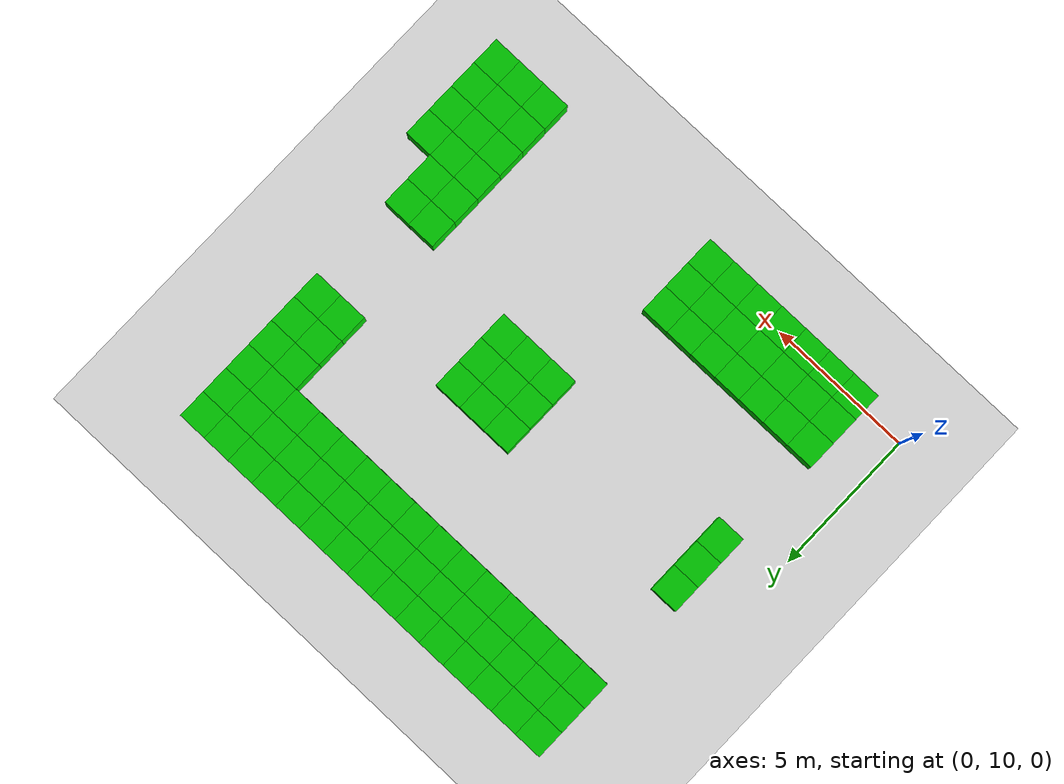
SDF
<sdf version="1.6">
 <world name="generated_maze">
  <model name="ground_plane">
   <static>true</static>
   <link name="link">
    <collision name="collision">
     <geometry><plane><normal>0 0 1</normal><size>100 100</size></plane></geometry>
    </collision>
    <visual name="visual">
     <geometry><plane><normal>0 0 1</normal><size>100 100</size></plane></geometry>
     <material>
      <ambient>0.9 0.9 0.9 1</ambient>
      <diffuse>0.9 0.9 0.9 1</diffuse>
      <specular>0.3 0.3 0.3 1</specular>
     </material>
    </visual>
   </link>
  </model>
  <model name="wall_0_26">
   <static>true</static>
   <pose>2 24 0.5 0 0 0</pose>
   <link name="link">
    <collision name="collision"><geometry><box><size>1 1 1</size></box></geometry></collision>
    <visual name="visual">
     <geometry><box><size>1 1 1</size></box></geometry>
     <material>
      <ambient>0.0 0.8 0.0 1</ambient>
      <diffuse>0.0 0.8 0.0 1</diffuse>
      <specular>0.1 0.1 0.1 1</specular>
     </material>
    </visual>
   </link>
  </model>
  <model name="wall_0_27">
   <static>true</static>
   <pose>3 24 0.5 0 0 0</pose>
   <link name="link">
    <collision name="collision"><geometry><box><size>1 1 1</size></box></geometry></collision>
    <visual name="visual">
     <geometry><box><size>1 1 1</size></box></geometry>
     <material>
      <ambient>0.0 0.8 0.0 1</ambient>
      <diffuse>0.0 0.8 0.0 1</diffuse>
      <specular>0.1 0.1 0.1 1</specular>
     </material>
    </visual>
   </link>
  </model>
  <model name="wall_0_28">
   <static>true</static>
   <pose>4 24 0.5 0 0 0</pose>
   <link name="link">
    <collision name="collision"><geometry><box><size>1 1 1</size></box></geometry></collision>
    <visual name="visual">
     <geometry><box><size>1 1 1</size></box></geometry>
     <material>
      <ambient>0.0 0.8 0.0 1</ambient>
      <diffuse>0.0 0.8 0.0 1</diffuse>
      <specular>0.1 0.1 0.1 1</specular>
     </material>
    </visual>
   </link>
  </model>
  <model name="wall_0_29">
   <static>true</static>
   <pose>5 24 0.5 0 0 0</pose>
   <link name="link">
    <collision name="collision"><geometry><box><size>1 1 1</size></box></geometry></collision>
    <visual name="visual">
     <geometry><box><size>1 1 1</size></box></geometry>
     <material>
      <ambient>0.0 0.8 0.0 1</ambient>
      <diffuse>0.0 0.8 0.0 1</diffuse>
      <specular>0.1 0.1 0.1 1</specular>
     </material>
    </visual>
   </link>
  </model>
  <model name="wall_0_30">
   <static>true</static>
   <pose>6 24 0.5 0 0 0</pose>
   <link name="link">
    <collision name="collision"><geometry><box><size>1 1 1</size></box></geometry></collision>
    <visual name="visual">
     <geometry><box><size>1 1 1</size></box></geometry>
     <material>
      <ambient>0.0 0.8 0.0 1</ambient>
      <diffuse>0.0 0.8 0.0 1</diffuse>
      <specular>0.1 0.1 0.1 1</specular>
     </material>
    </visual>
   </link>
  </model>
  <model name="wall_0_31">
   <static>true</static>
   <pose>7 24 0.5 0 0 0</pose>
   <link name="link">
    <collision name="collision"><geometry><box><size>1 1 1</size></box></geometry></collision>
    <visual name="visual">
     <geometry><box><size>1 1 1</size></box></geometry>
     <material>
      <ambient>0.0 0.8 0.0 1</ambient>
      <diffuse>0.0 0.8 0.0 1</diffuse>
      <specular>0.1 0.1 0.1 1</specular>
     </material>
    </visual>
   </link>
  </model>
  <model name="wall_0_32">
   <static>true</static>
   <pose>8 24 0.5 0 0 0</pose>
   <link name="link">
    <collision name="collision"><geometry><box><size>1 1 1</size></box></geometry></collision>
    <visual name="visual">
     <geometry><box><size>1 1 1</size></box></geometry>
     <material>
      <ambient>0.0 0.8 0.0 1</ambient>
      <diffuse>0.0 0.8 0.0 1</diffuse>
      <specular>0.1 0.1 0.1 1</specular>
     </material>
    </visual>
   </link>
  </model>
  <model name="wall_0_33">
   <static>true</static>
   <pose>9 24 0.5 0 0 0</pose>
   <link name="link">
    <collision name="collision"><geometry><box><size>1 1 1</size></box></geometry></collision>
    <visual name="visual">
     <geometry><box><size>1 1 1</size></box></geometry>
     <material>
      <ambient>0.0 0.8 0.0 1</ambient>
      <diffuse>0.0 0.8 0.0 1</diffuse>
      <specular>0.1 0.1 0.1 1</specular>
     </material>
    </visual>
   </link>
  </model>
  <model name="wall_0_34">
   <static>true</static>
   <pose>10 24 0.5 0 0 0</pose>
   <link name="link">
    <collision name="collision"><geometry><box><size>1 1 1</size></box></geometry></collision>
    <visual name="visual">
     <geometry><box><size>1 1 1</size></box></geometry>
     <material>
      <ambient>0.0 0.8 0.0 1</ambient>
      <diffuse>0.0 0.8 0.0 1</diffuse>
      <specular>0.1 0.1 0.1 1</specular>
     </material>
    </visual>
   </link>
  </model>
  <model name="wall_0_35">
   <static>true</static>
   <pose>11 24 0.5 0 0 0</pose>
   <link name="link">
    <collision name="collision"><geometry><box><size>1 1 1</size></box></geometry></collision>
    <visual name="visual">
     <geometry><box><size>1 1 1</size></box></geometry>
     <material>
      <ambient>0.0 0.8 0.0 1</ambient>
      <diffuse>0.0 0.8 0.0 1</diffuse>
      <specular>0.1 0.1 0.1 1</specular>
     </material>
    </visual>
   </link>
  </model>
  <model name="wall_0_36">
   <static>true</static>
   <pose>12 24 0.5 0 0 0</pose>
   <link name="link">
    <collision name="collision"><geometry><box><size>1 1 1</size></box></geometry></collision>
    <visual name="visual">
     <geometry><box><size>1 1 1</size></box></geometry>
     <material>
      <ambient>0.0 0.8 0.0 1</ambient>
      <diffuse>0.0 0.8 0.0 1</diffuse>
      <specular>0.1 0.1 0.1 1</specular>
     </material>
    </visual>
   </link>
  </model>
  <model name="wall_0_37">
   <static>true</static>
   <pose>13 24 0.5 0 0 0</pose>
   <link name="link">
    <collision name="collision"><geometry><box><size>1 1 1</size></box></geometry></collision>
    <visual name="visual">
     <geometry><box><size>1 1 1</size></box></geometry>
     <material>
      <ambient>0.0 0.8 0.0 1</ambient>
      <diffuse>0.0 0.8 0.0 1</diffuse>
      <specular>0.1 0.1 0.1 1</specular>
     </material>
    </visual>
   </link>
  </model>
  <model name="wall_0_38">
   <static>true</static>
   <pose>14 24 0.5 0 0 0</pose>
   <link name="link">
    <collision name="collision"><geometry><box><size>1 1 1</size></box></geometry></collision>
    <visual name="visual">
     <geometry><box><size>1 1 1</size></box></geometry>
     <material>
      <ambient>0.0 0.8 0.0 1</ambient>
      <diffuse>0.0 0.8 0.0 1</diffuse>
      <specular>0.1 0.1 0.1 1</specular>
     </material>
    </visual>
   </link>
  </model>
  <model name="wall_0_39">
   <static>true</static>
   <pose>15 24 0.5 0 0 0</pose>
   <link name="link">
    <collision name="collision"><geometry><box><size>1 1 1</size></box></geometry></collision>
    <visual name="visual">
     <geometry><box><size>1 1 1</size></box></geometry>
     <material>
      <ambient>0.0 0.8 0.0 1</ambient>
      <diffuse>0.0 0.8 0.0 1</diffuse>
      <specular>0.1 0.1 0.1 1</specular>
     </material>
    </visual>
   </link>
  </model>
  <model name="wall_0_40">
   <static>true</static>
   <pose>16 24 0.5 0 0 0</pose>
   <link name="link">
    <collision name="collision"><geometry><box><size>1 1 1</size></box></geometry></collision>
    <visual name="visual">
     <geometry><box><size>1 1 1</size></box></geometry>
     <material>
      <ambient>0.0 0.8 0.0 1</ambient>
      <diffuse>0.0 0.8 0.0 1</diffuse>
      <specular>0.1 0.1 0.1 1</specular>
     </material>
    </visual>
   </link>
  </model>
  <model name="wall_1_26">
   <static>true</static>
   <pose>2 23 0.5 0 0 0</pose>
   <link name="link">
    <collision name="collision"><geometry><box><size>1 1 1</size></box></geometry></collision>
    <visual name="visual">
     <geometry><box><size>1 1 1</size></box></geometry>
     <material>
      <ambient>0.0 0.8 0.0 1</ambient>
      <diffuse>0.0 0.8 0.0 1</diffuse>
      <specular>0.1 0.1 0.1 1</specular>
     </material>
    </visual>
   </link>
  </model>
  <model name="wall_1_27">
   <static>true</static>
   <pose>3 23 0.5 0 0 0</pose>
   <link name="link">
    <collision name="collision"><geometry><box><size>1 1 1</size></box></geometry></collision>
    <visual name="visual">
     <geometry><box><size>1 1 1</size></box></geometry>
     <material>
      <ambient>0.0 0.8 0.0 1</ambient>
      <diffuse>0.0 0.8 0.0 1</diffuse>
      <specular>0.1 0.1 0.1 1</specular>
     </material>
    </visual>
   </link>
  </model>
  <model name="wall_1_28">
   <static>true</static>
   <pose>4 23 0.5 0 0 0</pose>
   <link name="link">
    <collision name="collision"><geometry><box><size>1 1 1</size></box></geometry></collision>
    <visual name="visual">
     <geometry><box><size>1 1 1</size></box></geometry>
     <material>
      <ambient>0.0 0.8 0.0 1</ambient>
      <diffuse>0.0 0.8 0.0 1</diffuse>
      <specular>0.1 0.1 0.1 1</specular>
     </material>
    </visual>
   </link>
  </model>
  <model name="wall_1_29">
   <static>true</static>
   <pose>5 23 0.5 0 0 0</pose>
   <link name="link">
    <collision name="collision"><geometry><box><size>1 1 1</size></box></geometry></collision>
    <visual name="visual">
     <geometry><box><size>1 1 1</size></box></geometry>
     <material>
      <ambient>0.0 0.8 0.0 1</ambient>
      <diffuse>0.0 0.8 0.0 1</diffuse>
      <specular>0.1 0.1 0.1 1</specular>
     </material>
    </visual>
   </link>
  </model>
  <model name="wall_1_30">
   <static>true</static>
   <pose>6 23 0.5 0 0 0</pose>
   <link name="link">
    <collision name="collision"><geometry><box><size>1 1 1</size></box></geometry></collision>
    <visual name="visual">
     <geometry><box><size>1 1 1</size></box></geometry>
     <material>
      <ambient>0.0 0.8 0.0 1</ambient>
      <diffuse>0.0 0.8 0.0 1</diffuse>
      <specular>0.1 0.1 0.1 1</specular>
     </material>
    </visual>
   </link>
  </model>
  <model name="wall_1_31">
   <static>true</static>
   <pose>7 23 0.5 0 0 0</pose>
   <link name="link">
    <collision name="collision"><geometry><box><size>1 1 1</size></box></geometry></collision>
    <visual name="visual">
     <geometry><box><size>1 1 1</size></box></geometry>
     <material>
      <ambient>0.0 0.8 0.0 1</ambient>
      <diffuse>0.0 0.8 0.0 1</diffuse>
      <specular>0.1 0.1 0.1 1</specular>
     </material>
    </visual>
   </link>
  </model>
  <model name="wall_1_32">
   <static>true</static>
   <pose>8 23 0.5 0 0 0</pose>
   <link name="link">
    <collision name="collision"><geometry><box><size>1 1 1</size></box></geometry></collision>
    <visual name="visual">
     <geometry><box><size>1 1 1</size></box></geometry>
     <material>
      <ambient>0.0 0.8 0.0 1</ambient>
      <diffuse>0.0 0.8 0.0 1</diffuse>
      <specular>0.1 0.1 0.1 1</specular>
     </material>
    </visual>
   </link>
  </model>
  <model name="wall_1_33">
   <static>true</static>
   <pose>9 23 0.5 0 0 0</pose>
   <link name="link">
    <collision name="collision"><geometry><box><size>1 1 1</size></box></geometry></collision>
    <visual name="visual">
     <geometry><box><size>1 1 1</size></box></geometry>
     <material>
      <ambient>0.0 0.8 0.0 1</ambient>
      <diffuse>0.0 0.8 0.0 1</diffuse>
      <specular>0.1 0.1 0.1 1</specular>
     </material>
    </visual>
   </link>
  </model>
  <model name="wall_1_34">
   <static>true</static>
   <pose>10 23 0.5 0 0 0</pose>
   <link name="link">
    <collision name="collision"><geometry><box><size>1 1 1</size></box></geometry></collision>
    <visual name="visual">
     <geometry><box><size>1 1 1</size></box></geometry>
     <material>
      <ambient>0.0 0.8 0.0 1</ambient>
      <diffuse>0.0 0.8 0.0 1</diffuse>
      <specular>0.1 0.1 0.1 1</specular>
     </material>
    </visual>
   </link>
  </model>
  <model name="wall_1_35">
   <static>true</static>
   <pose>11 23 0.5 0 0 0</pose>
   <link name="link">
    <collision name="collision"><geometry><box><size>1 1 1</size></box></geometry></collision>
    <visual name="visual">
     <geometry><box><size>1 1 1</size></box></geometry>
     <material>
      <ambient>0.0 0.8 0.0 1</ambient>
      <diffuse>0.0 0.8 0.0 1</diffuse>
      <specular>0.1 0.1 0.1 1</specular>
     </material>
    </visual>
   </link>
  </model>
  <model name="wall_1_36">
   <static>true</static>
   <pose>12 23 0.5 0 0 0</pose>
   <link name="link">
    <collision name="collision"><geometry><box><size>1 1 1</size></box></geometry></collision>
    <visual name="visual">
     <geometry><box><size>1 1 1</size></box></geometry>
     <material>
      <ambient>0.0 0.8 0.0 1</ambient>
      <diffuse>0.0 0.8 0.0 1</diffuse>
      <specular>0.1 0.1 0.1 1</specular>
     </material>
    </visual>
   </link>
  </model>
  <model name="wall_1_37">
   <static>true</static>
   <pose>13 23 0.5 0 0 0</pose>
   <link name="link">
    <collision name="collision"><geometry><box><size>1 1 1</size></box></geometry></collision>
    <visual name="visual">
     <geometry><box><size>1 1 1</size></box></geometry>
     <material>
      <ambient>0.0 0.8 0.0 1</ambient>
      <diffuse>0.0 0.8 0.0 1</diffuse>
      <specular>0.1 0.1 0.1 1</specular>
     </material>
    </visual>
   </link>
  </model>
  <model name="wall_1_38">
   <static>true</static>
   <pose>14 23 0.5 0 0 0</pose>
   <link name="link">
    <collision name="collision"><geometry><box><size>1 1 1</size></box></geometry></collision>
    <visual name="visual">
     <geometry><box><size>1 1 1</size></box></geometry>
     <material>
      <ambient>0.0 0.8 0.0 1</ambient>
      <diffuse>0.0 0.8 0.0 1</diffuse>
      <specular>0.1 0.1 0.1 1</specular>
     </material>
    </visual>
   </link>
  </model>
  <model name="wall_1_39">
   <static>true</static>
   <pose>15 23 0.5 0 0 0</pose>
   <link name="link">
    <collision name="collision"><geometry><box><size>1 1 1</size></box></geometry></collision>
    <visual name="visual">
     <geometry><box><size>1 1 1</size></box></geometry>
     <material>
      <ambient>0.0 0.8 0.0 1</ambient>
      <diffuse>0.0 0.8 0.0 1</diffuse>
      <specular>0.1 0.1 0.1 1</specular>
     </material>
    </visual>
   </link>
  </model>
  <model name="wall_1_40">
   <static>true</static>
   <pose>16 23 0.5 0 0 0</pose>
   <link name="link">
    <collision name="collision"><geometry><box><size>1 1 1</size></box></geometry></collision>
    <visual name="visual">
     <geometry><box><size>1 1 1</size></box></geometry>
     <material>
      <ambient>0.0 0.8 0.0 1</ambient>
      <diffuse>0.0 0.8 0.0 1</diffuse>
      <specular>0.1 0.1 0.1 1</specular>
     </material>
    </visual>
   </link>
  </model>
  <model name="wall_2_26">
   <static>true</static>
   <pose>2 22 0.5 0 0 0</pose>
   <link name="link">
    <collision name="collision"><geometry><box><size>1 1 1</size></box></geometry></collision>
    <visual name="visual">
     <geometry><box><size>1 1 1</size></box></geometry>
     <material>
      <ambient>0.0 0.8 0.0 1</ambient>
      <diffuse>0.0 0.8 0.0 1</diffuse>
      <specular>0.1 0.1 0.1 1</specular>
     </material>
    </visual>
   </link>
  </model>
  <model name="wall_2_27">
   <static>true</static>
   <pose>3 22 0.5 0 0 0</pose>
   <link name="link">
    <collision name="collision"><geometry><box><size>1 1 1</size></box></geometry></collision>
    <visual name="visual">
     <geometry><box><size>1 1 1</size></box></geometry>
     <material>
      <ambient>0.0 0.8 0.0 1</ambient>
      <diffuse>0.0 0.8 0.0 1</diffuse>
      <specular>0.1 0.1 0.1 1</specular>
     </material>
    </visual>
   </link>
  </model>
  <model name="wall_2_28">
   <static>true</static>
   <pose>4 22 0.5 0 0 0</pose>
   <link name="link">
    <collision name="collision"><geometry><box><size>1 1 1</size></box></geometry></collision>
    <visual name="visual">
     <geometry><box><size>1 1 1</size></box></geometry>
     <material>
      <ambient>0.0 0.8 0.0 1</ambient>
      <diffuse>0.0 0.8 0.0 1</diffuse>
      <specular>0.1 0.1 0.1 1</specular>
     </material>
    </visual>
   </link>
  </model>
  <model name="wall_2_29">
   <static>true</static>
   <pose>5 22 0.5 0 0 0</pose>
   <link name="link">
    <collision name="collision"><geometry><box><size>1 1 1</size></box></geometry></collision>
    <visual name="visual">
     <geometry><box><size>1 1 1</size></box></geometry>
     <material>
      <ambient>0.0 0.8 0.0 1</ambient>
      <diffuse>0.0 0.8 0.0 1</diffuse>
      <specular>0.1 0.1 0.1 1</specular>
     </material>
    </visual>
   </link>
  </model>
  <model name="wall_2_30">
   <static>true</static>
   <pose>6 22 0.5 0 0 0</pose>
   <link name="link">
    <collision name="collision"><geometry><box><size>1 1 1</size></box></geometry></collision>
    <visual name="visual">
     <geometry><box><size>1 1 1</size></box></geometry>
     <material>
      <ambient>0.0 0.8 0.0 1</ambient>
      <diffuse>0.0 0.8 0.0 1</diffuse>
      <specular>0.1 0.1 0.1 1</specular>
     </material>
    </visual>
   </link>
  </model>
  <model name="wall_2_31">
   <static>true</static>
   <pose>7 22 0.5 0 0 0</pose>
   <link name="link">
    <collision name="collision"><geometry><box><size>1 1 1</size></box></geometry></collision>
    <visual name="visual">
     <geometry><box><size>1 1 1</size></box></geometry>
     <material>
      <ambient>0.0 0.8 0.0 1</ambient>
      <diffuse>0.0 0.8 0.0 1</diffuse>
      <specular>0.1 0.1 0.1 1</specular>
     </material>
    </visual>
   </link>
  </model>
  <model name="wall_2_32">
   <static>true</static>
   <pose>8 22 0.5 0 0 0</pose>
   <link name="link">
    <collision name="collision"><geometry><box><size>1 1 1</size></box></geometry></collision>
    <visual name="visual">
     <geometry><box><size>1 1 1</size></box></geometry>
     <material>
      <ambient>0.0 0.8 0.0 1</ambient>
      <diffuse>0.0 0.8 0.0 1</diffuse>
      <specular>0.1 0.1 0.1 1</specular>
     </material>
    </visual>
   </link>
  </model>
  <model name="wall_2_33">
   <static>true</static>
   <pose>9 22 0.5 0 0 0</pose>
   <link name="link">
    <collision name="collision"><geometry><box><size>1 1 1</size></box></geometry></collision>
    <visual name="visual">
     <geometry><box><size>1 1 1</size></box></geometry>
     <material>
      <ambient>0.0 0.8 0.0 1</ambient>
      <diffuse>0.0 0.8 0.0 1</diffuse>
      <specular>0.1 0.1 0.1 1</specular>
     </material>
    </visual>
   </link>
  </model>
  <model name="wall_2_34">
   <static>true</static>
   <pose>10 22 0.5 0 0 0</pose>
   <link name="link">
    <collision name="collision"><geometry><box><size>1 1 1</size></box></geometry></collision>
    <visual name="visual">
     <geometry><box><size>1 1 1</size></box></geometry>
     <material>
      <ambient>0.0 0.8 0.0 1</ambient>
      <diffuse>0.0 0.8 0.0 1</diffuse>
      <specular>0.1 0.1 0.1 1</specular>
     </material>
    </visual>
   </link>
  </model>
  <model name="wall_2_35">
   <static>true</static>
   <pose>11 22 0.5 0 0 0</pose>
   <link name="link">
    <collision name="collision"><geometry><box><size>1 1 1</size></box></geometry></collision>
    <visual name="visual">
     <geometry><box><size>1 1 1</size></box></geometry>
     <material>
      <ambient>0.0 0.8 0.0 1</ambient>
      <diffuse>0.0 0.8 0.0 1</diffuse>
      <specular>0.1 0.1 0.1 1</specular>
     </material>
    </visual>
   </link>
  </model>
  <model name="wall_2_36">
   <static>true</static>
   <pose>12 22 0.5 0 0 0</pose>
   <link name="link">
    <collision name="collision"><geometry><box><size>1 1 1</size></box></geometry></collision>
    <visual name="visual">
     <geometry><box><size>1 1 1</size></box></geometry>
     <material>
      <ambient>0.0 0.8 0.0 1</ambient>
      <diffuse>0.0 0.8 0.0 1</diffuse>
      <specular>0.1 0.1 0.1 1</specular>
     </material>
    </visual>
   </link>
  </model>
  <model name="wall_2_37">
   <static>true</static>
   <pose>13 22 0.5 0 0 0</pose>
   <link name="link">
    <collision name="collision"><geometry><box><size>1 1 1</size></box></geometry></collision>
    <visual name="visual">
     <geometry><box><size>1 1 1</size></box></geometry>
     <material>
      <ambient>0.0 0.8 0.0 1</ambient>
      <diffuse>0.0 0.8 0.0 1</diffuse>
      <specular>0.1 0.1 0.1 1</specular>
     </material>
    </visual>
   </link>
  </model>
  <model name="wall_2_38">
   <static>true</static>
   <pose>14 22 0.5 0 0 0</pose>
   <link name="link">
    <collision name="collision"><geometry><box><size>1 1 1</size></box></geometry></collision>
    <visual name="visual">
     <geometry><box><size>1 1 1</size></box></geometry>
     <material>
      <ambient>0.0 0.8 0.0 1</ambient>
      <diffuse>0.0 0.8 0.0 1</diffuse>
      <specular>0.1 0.1 0.1 1</specular>
     </material>
    </visual>
   </link>
  </model>
  <model name="wall_2_39">
   <static>true</static>
   <pose>15 22 0.5 0 0 0</pose>
   <link name="link">
    <collision name="collision"><geometry><box><size>1 1 1</size></box></geometry></collision>
    <visual name="visual">
     <geometry><box><size>1 1 1</size></box></geometry>
     <material>
      <ambient>0.0 0.8 0.0 1</ambient>
      <diffuse>0.0 0.8 0.0 1</diffuse>
      <specular>0.1 0.1 0.1 1</specular>
     </material>
    </visual>
   </link>
  </model>
  <model name="wall_2_40">
   <static>true</static>
   <pose>16 22 0.5 0 0 0</pose>
   <link name="link">
    <collision name="collision"><geometry><box><size>1 1 1</size></box></geometry></collision>
    <visual name="visual">
     <geometry><box><size>1 1 1</size></box></geometry>
     <material>
      <ambient>0.0 0.8 0.0 1</ambient>
      <diffuse>0.0 0.8 0.0 1</diffuse>
      <specular>0.1 0.1 0.1 1</specular>
     </material>
    </visual>
   </link>
  </model>
  <model name="wall_3_39">
   <static>true</static>
   <pose>15 21 0.5 0 0 0</pose>
   <link name="link">
    <collision name="collision"><geometry><box><size>1 1 1</size></box></geometry></collision>
    <visual name="visual">
     <geometry><box><size>1 1 1</size></box></geometry>
     <material>
      <ambient>0.0 0.8 0.0 1</ambient>
      <diffuse>0.0 0.8 0.0 1</diffuse>
      <specular>0.1 0.1 0.1 1</specular>
     </material>
    </visual>
   </link>
  </model>
  <model name="wall_3_40">
   <static>true</static>
   <pose>16 21 0.5 0 0 0</pose>
   <link name="link">
    <collision name="collision"><geometry><box><size>1 1 1</size></box></geometry></collision>
    <visual name="visual">
     <geometry><box><size>1 1 1</size></box></geometry>
     <material>
      <ambient>0.0 0.8 0.0 1</ambient>
      <diffuse>0.0 0.8 0.0 1</diffuse>
      <specular>0.1 0.1 0.1 1</specular>
     </material>
    </visual>
   </link>
  </model>
  <model name="wall_4_39">
   <static>true</static>
   <pose>15 20 0.5 0 0 0</pose>
   <link name="link">
    <collision name="collision"><geometry><box><size>1 1 1</size></box></geometry></collision>
    <visual name="visual">
     <geometry><box><size>1 1 1</size></box></geometry>
     <material>
      <ambient>0.0 0.8 0.0 1</ambient>
      <diffuse>0.0 0.8 0.0 1</diffuse>
      <specular>0.1 0.1 0.1 1</specular>
     </material>
    </visual>
   </link>
  </model>
  <model name="wall_4_40">
   <static>true</static>
   <pose>16 20 0.5 0 0 0</pose>
   <link name="link">
    <collision name="collision"><geometry><box><size>1 1 1</size></box></geometry></collision>
    <visual name="visual">
     <geometry><box><size>1 1 1</size></box></geometry>
     <material>
      <ambient>0.0 0.8 0.0 1</ambient>
      <diffuse>0.0 0.8 0.0 1</diffuse>
      <specular>0.1 0.1 0.1 1</specular>
     </material>
    </visual>
   </link>
  </model>
  <model name="wall_5_39">
   <static>true</static>
   <pose>15 19 0.5 0 0 0</pose>
   <link name="link">
    <collision name="collision"><geometry><box><size>1 1 1</size></box></geometry></collision>
    <visual name="visual">
     <geometry><box><size>1 1 1</size></box></geometry>
     <material>
      <ambient>0.0 0.8 0.0 1</ambient>
      <diffuse>0.0 0.8 0.0 1</diffuse>
      <specular>0.1 0.1 0.1 1</specular>
     </material>
    </visual>
   </link>
  </model>
  <model name="wall_5_40">
   <static>true</static>
   <pose>16 19 0.5 0 0 0</pose>
   <link name="link">
    <collision name="collision"><geometry><box><size>1 1 1</size></box></geometry></collision>
    <visual name="visual">
     <geometry><box><size>1 1 1</size></box></geometry>
     <material>
      <ambient>0.0 0.8 0.0 1</ambient>
      <diffuse>0.0 0.8 0.0 1</diffuse>
      <specular>0.1 0.1 0.1 1</specular>
     </material>
    </visual>
   </link>
  </model>
  <model name="wall_6_26">
   <static>true</static>
   <pose>2 18 0.5 0 0 0</pose>
   <link name="link">
    <collision name="collision"><geometry><box><size>1 1 1</size></box></geometry></collision>
    <visual name="visual">
     <geometry><box><size>1 1 1</size></box></geometry>
     <material>
      <ambient>0.0 0.8 0.0 1</ambient>
      <diffuse>0.0 0.8 0.0 1</diffuse>
      <specular>0.1 0.1 0.1 1</specular>
     </material>
    </visual>
   </link>
  </model>
  <model name="wall_6_33">
   <static>true</static>
   <pose>9 18 0.5 0 0 0</pose>
   <link name="link">
    <collision name="collision"><geometry><box><size>1 1 1</size></box></geometry></collision>
    <visual name="visual">
     <geometry><box><size>1 1 1</size></box></geometry>
     <material>
      <ambient>0.0 0.8 0.0 1</ambient>
      <diffuse>0.0 0.8 0.0 1</diffuse>
      <specular>0.1 0.1 0.1 1</specular>
     </material>
    </visual>
   </link>
  </model>
  <model name="wall_6_34">
   <static>true</static>
   <pose>10 18 0.5 0 0 0</pose>
   <link name="link">
    <collision name="collision"><geometry><box><size>1 1 1</size></box></geometry></collision>
    <visual name="visual">
     <geometry><box><size>1 1 1</size></box></geometry>
     <material>
      <ambient>0.0 0.8 0.0 1</ambient>
      <diffuse>0.0 0.8 0.0 1</diffuse>
      <specular>0.1 0.1 0.1 1</specular>
     </material>
    </visual>
   </link>
  </model>
  <model name="wall_6_35">
   <static>true</static>
   <pose>11 18 0.5 0 0 0</pose>
   <link name="link">
    <collision name="collision"><geometry><box><size>1 1 1</size></box></geometry></collision>
    <visual name="visual">
     <geometry><box><size>1 1 1</size></box></geometry>
     <material>
      <ambient>0.0 0.8 0.0 1</ambient>
      <diffuse>0.0 0.8 0.0 1</diffuse>
      <specular>0.1 0.1 0.1 1</specular>
     </material>
    </visual>
   </link>
  </model>
  <model name="wall_7_26">
   <static>true</static>
   <pose>2 17 0.5 0 0 0</pose>
   <link name="link">
    <collision name="collision"><geometry><box><size>1 1 1</size></box></geometry></collision>
    <visual name="visual">
     <geometry><box><size>1 1 1</size></box></geometry>
     <material>
      <ambient>0.0 0.8 0.0 1</ambient>
      <diffuse>0.0 0.8 0.0 1</diffuse>
      <specular>0.1 0.1 0.1 1</specular>
     </material>
    </visual>
   </link>
  </model>
  <model name="wall_7_33">
   <static>true</static>
   <pose>9 17 0.5 0 0 0</pose>
   <link name="link">
    <collision name="collision"><geometry><box><size>1 1 1</size></box></geometry></collision>
    <visual name="visual">
     <geometry><box><size>1 1 1</size></box></geometry>
     <material>
      <ambient>0.0 0.8 0.0 1</ambient>
      <diffuse>0.0 0.8 0.0 1</diffuse>
      <specular>0.1 0.1 0.1 1</specular>
     </material>
    </visual>
   </link>
  </model>
  <model name="wall_7_34">
   <static>true</static>
   <pose>10 17 0.5 0 0 0</pose>
   <link name="link">
    <collision name="collision"><geometry><box><size>1 1 1</size></box></geometry></collision>
    <visual name="visual">
     <geometry><box><size>1 1 1</size></box></geometry>
     <material>
      <ambient>0.0 0.8 0.0 1</ambient>
      <diffuse>0.0 0.8 0.0 1</diffuse>
      <specular>0.1 0.1 0.1 1</specular>
     </material>
    </visual>
   </link>
  </model>
  <model name="wall_7_35">
   <static>true</static>
   <pose>11 17 0.5 0 0 0</pose>
   <link name="link">
    <collision name="collision"><geometry><box><size>1 1 1</size></box></geometry></collision>
    <visual name="visual">
     <geometry><box><size>1 1 1</size></box></geometry>
     <material>
      <ambient>0.0 0.8 0.0 1</ambient>
      <diffuse>0.0 0.8 0.0 1</diffuse>
      <specular>0.1 0.1 0.1 1</specular>
     </material>
    </visual>
   </link>
  </model>
  <model name="wall_8_26">
   <static>true</static>
   <pose>2 16 0.5 0 0 0</pose>
   <link name="link">
    <collision name="collision"><geometry><box><size>1 1 1</size></box></geometry></collision>
    <visual name="visual">
     <geometry><box><size>1 1 1</size></box></geometry>
     <material>
      <ambient>0.0 0.8 0.0 1</ambient>
      <diffuse>0.0 0.8 0.0 1</diffuse>
      <specular>0.1 0.1 0.1 1</specular>
     </material>
    </visual>
   </link>
  </model>
  <model name="wall_8_33">
   <static>true</static>
   <pose>9 16 0.5 0 0 0</pose>
   <link name="link">
    <collision name="collision"><geometry><box><size>1 1 1</size></box></geometry></collision>
    <visual name="visual">
     <geometry><box><size>1 1 1</size></box></geometry>
     <material>
      <ambient>0.0 0.8 0.0 1</ambient>
      <diffuse>0.0 0.8 0.0 1</diffuse>
      <specular>0.1 0.1 0.1 1</specular>
     </material>
    </visual>
   </link>
  </model>
  <model name="wall_8_34">
   <static>true</static>
   <pose>10 16 0.5 0 0 0</pose>
   <link name="link">
    <collision name="collision"><geometry><box><size>1 1 1</size></box></geometry></collision>
    <visual name="visual">
     <geometry><box><size>1 1 1</size></box></geometry>
     <material>
      <ambient>0.0 0.8 0.0 1</ambient>
      <diffuse>0.0 0.8 0.0 1</diffuse>
      <specular>0.1 0.1 0.1 1</specular>
     </material>
    </visual>
   </link>
  </model>
  <model name="wall_8_35">
   <static>true</static>
   <pose>11 16 0.5 0 0 0</pose>
   <link name="link">
    <collision name="collision"><geometry><box><size>1 1 1</size></box></geometry></collision>
    <visual name="visual">
     <geometry><box><size>1 1 1</size></box></geometry>
     <material>
      <ambient>0.0 0.8 0.0 1</ambient>
      <diffuse>0.0 0.8 0.0 1</diffuse>
      <specular>0.1 0.1 0.1 1</specular>
     </material>
    </visual>
   </link>
  </model>
  <model name="wall_9_39">
   <static>true</static>
   <pose>15 15 0.5 0 0 0</pose>
   <link name="link">
    <collision name="collision"><geometry><box><size>1 1 1</size></box></geometry></collision>
    <visual name="visual">
     <geometry><box><size>1 1 1</size></box></geometry>
     <material>
      <ambient>0.0 0.8 0.0 1</ambient>
      <diffuse>0.0 0.8 0.0 1</diffuse>
      <specular>0.1 0.1 0.1 1</specular>
     </material>
    </visual>
   </link>
  </model>
  <model name="wall_9_40">
   <static>true</static>
   <pose>16 15 0.5 0 0 0</pose>
   <link name="link">
    <collision name="collision"><geometry><box><size>1 1 1</size></box></geometry></collision>
    <visual name="visual">
     <geometry><box><size>1 1 1</size></box></geometry>
     <material>
      <ambient>0.0 0.8 0.0 1</ambient>
      <diffuse>0.0 0.8 0.0 1</diffuse>
      <specular>0.1 0.1 0.1 1</specular>
     </material>
    </visual>
   </link>
  </model>
  <model name="wall_10_39">
   <static>true</static>
   <pose>15 14 0.5 0 0 0</pose>
   <link name="link">
    <collision name="collision"><geometry><box><size>1 1 1</size></box></geometry></collision>
    <visual name="visual">
     <geometry><box><size>1 1 1</size></box></geometry>
     <material>
      <ambient>0.0 0.8 0.0 1</ambient>
      <diffuse>0.0 0.8 0.0 1</diffuse>
      <specular>0.1 0.1 0.1 1</specular>
     </material>
    </visual>
   </link>
  </model>
  <model name="wall_10_40">
   <static>true</static>
   <pose>16 14 0.5 0 0 0</pose>
   <link name="link">
    <collision name="collision"><geometry><box><size>1 1 1</size></box></geometry></collision>
    <visual name="visual">
     <geometry><box><size>1 1 1</size></box></geometry>
     <material>
      <ambient>0.0 0.8 0.0 1</ambient>
      <diffuse>0.0 0.8 0.0 1</diffuse>
      <specular>0.1 0.1 0.1 1</specular>
     </material>
    </visual>
   </link>
  </model>
  <model name="wall_11_39">
   <static>true</static>
   <pose>15 13 0.5 0 0 0</pose>
   <link name="link">
    <collision name="collision"><geometry><box><size>1 1 1</size></box></geometry></collision>
    <visual name="visual">
     <geometry><box><size>1 1 1</size></box></geometry>
     <material>
      <ambient>0.0 0.8 0.0 1</ambient>
      <diffuse>0.0 0.8 0.0 1</diffuse>
      <specular>0.1 0.1 0.1 1</specular>
     </material>
    </visual>
   </link>
  </model>
  <model name="wall_11_40">
   <static>true</static>
   <pose>16 13 0.5 0 0 0</pose>
   <link name="link">
    <collision name="collision"><geometry><box><size>1 1 1</size></box></geometry></collision>
    <visual name="visual">
     <geometry><box><size>1 1 1</size></box></geometry>
     <material>
      <ambient>0.0 0.8 0.0 1</ambient>
      <diffuse>0.0 0.8 0.0 1</diffuse>
      <specular>0.1 0.1 0.1 1</specular>
     </material>
    </visual>
   </link>
  </model>
  <model name="wall_11_41">
   <static>true</static>
   <pose>17 13 0.5 0 0 0</pose>
   <link name="link">
    <collision name="collision"><geometry><box><size>1 1 1</size></box></geometry></collision>
    <visual name="visual">
     <geometry><box><size>1 1 1</size></box></geometry>
     <material>
      <ambient>0.0 0.8 0.0 1</ambient>
      <diffuse>0.0 0.8 0.0 1</diffuse>
      <specular>0.1 0.1 0.1 1</specular>
     </material>
    </visual>
   </link>
  </model>
  <model name="wall_12_26">
   <static>true</static>
   <pose>2 12 0.5 0 0 0</pose>
   <link name="link">
    <collision name="collision"><geometry><box><size>1 1 1</size></box></geometry></collision>
    <visual name="visual">
     <geometry><box><size>1 1 1</size></box></geometry>
     <material>
      <ambient>0.0 0.8 0.0 1</ambient>
      <diffuse>0.0 0.8 0.0 1</diffuse>
      <specular>0.1 0.1 0.1 1</specular>
     </material>
    </visual>
   </link>
  </model>
  <model name="wall_12_27">
   <static>true</static>
   <pose>3 12 0.5 0 0 0</pose>
   <link name="link">
    <collision name="collision"><geometry><box><size>1 1 1</size></box></geometry></collision>
    <visual name="visual">
     <geometry><box><size>1 1 1</size></box></geometry>
     <material>
      <ambient>0.0 0.8 0.0 1</ambient>
      <diffuse>0.0 0.8 0.0 1</diffuse>
      <specular>0.1 0.1 0.1 1</specular>
     </material>
    </visual>
   </link>
  </model>
  <model name="wall_12_28">
   <static>true</static>
   <pose>4 12 0.5 0 0 0</pose>
   <link name="link">
    <collision name="collision"><geometry><box><size>1 1 1</size></box></geometry></collision>
    <visual name="visual">
     <geometry><box><size>1 1 1</size></box></geometry>
     <material>
      <ambient>0.0 0.8 0.0 1</ambient>
      <diffuse>0.0 0.8 0.0 1</diffuse>
      <specular>0.1 0.1 0.1 1</specular>
     </material>
    </visual>
   </link>
  </model>
  <model name="wall_12_29">
   <static>true</static>
   <pose>5 12 0.5 0 0 0</pose>
   <link name="link">
    <collision name="collision"><geometry><box><size>1 1 1</size></box></geometry></collision>
    <visual name="visual">
     <geometry><box><size>1 1 1</size></box></geometry>
     <material>
      <ambient>0.0 0.8 0.0 1</ambient>
      <diffuse>0.0 0.8 0.0 1</diffuse>
      <specular>0.1 0.1 0.1 1</specular>
     </material>
    </visual>
   </link>
  </model>
  <model name="wall_12_30">
   <static>true</static>
   <pose>6 12 0.5 0 0 0</pose>
   <link name="link">
    <collision name="collision"><geometry><box><size>1 1 1</size></box></geometry></collision>
    <visual name="visual">
     <geometry><box><size>1 1 1</size></box></geometry>
     <material>
      <ambient>0.0 0.8 0.0 1</ambient>
      <diffuse>0.0 0.8 0.0 1</diffuse>
      <specular>0.1 0.1 0.1 1</specular>
     </material>
    </visual>
   </link>
  </model>
  <model name="wall_12_31">
   <static>true</static>
   <pose>7 12 0.5 0 0 0</pose>
   <link name="link">
    <collision name="collision"><geometry><box><size>1 1 1</size></box></geometry></collision>
    <visual name="visual">
     <geometry><box><size>1 1 1</size></box></geometry>
     <material>
      <ambient>0.0 0.8 0.0 1</ambient>
      <diffuse>0.0 0.8 0.0 1</diffuse>
      <specular>0.1 0.1 0.1 1</specular>
     </material>
    </visual>
   </link>
  </model>
  <model name="wall_12_32">
   <static>true</static>
   <pose>8 12 0.5 0 0 0</pose>
   <link name="link">
    <collision name="collision"><geometry><box><size>1 1 1</size></box></geometry></collision>
    <visual name="visual">
     <geometry><box><size>1 1 1</size></box></geometry>
     <material>
      <ambient>0.0 0.8 0.0 1</ambient>
      <diffuse>0.0 0.8 0.0 1</diffuse>
      <specular>0.1 0.1 0.1 1</specular>
     </material>
    </visual>
   </link>
  </model>
  <model name="wall_12_39">
   <static>true</static>
   <pose>15 12 0.5 0 0 0</pose>
   <link name="link">
    <collision name="collision"><geometry><box><size>1 1 1</size></box></geometry></collision>
    <visual name="visual">
     <geometry><box><size>1 1 1</size></box></geometry>
     <material>
      <ambient>0.0 0.8 0.0 1</ambient>
      <diffuse>0.0 0.8 0.0 1</diffuse>
      <specular>0.1 0.1 0.1 1</specular>
     </material>
    </visual>
   </link>
  </model>
  <model name="wall_12_40">
   <static>true</static>
   <pose>16 12 0.5 0 0 0</pose>
   <link name="link">
    <collision name="collision"><geometry><box><size>1 1 1</size></box></geometry></collision>
    <visual name="visual">
     <geometry><box><size>1 1 1</size></box></geometry>
     <material>
      <ambient>0.0 0.8 0.0 1</ambient>
      <diffuse>0.0 0.8 0.0 1</diffuse>
      <specular>0.1 0.1 0.1 1</specular>
     </material>
    </visual>
   </link>
  </model>
  <model name="wall_12_41">
   <static>true</static>
   <pose>17 12 0.5 0 0 0</pose>
   <link name="link">
    <collision name="collision"><geometry><box><size>1 1 1</size></box></geometry></collision>
    <visual name="visual">
     <geometry><box><size>1 1 1</size></box></geometry>
     <material>
      <ambient>0.0 0.8 0.0 1</ambient>
      <diffuse>0.0 0.8 0.0 1</diffuse>
      <specular>0.1 0.1 0.1 1</specular>
     </material>
    </visual>
   </link>
  </model>
  <model name="wall_13_26">
   <static>true</static>
   <pose>2 11 0.5 0 0 0</pose>
   <link name="link">
    <collision name="collision"><geometry><box><size>1 1 1</size></box></geometry></collision>
    <visual name="visual">
     <geometry><box><size>1 1 1</size></box></geometry>
     <material>
      <ambient>0.0 0.8 0.0 1</ambient>
      <diffuse>0.0 0.8 0.0 1</diffuse>
      <specular>0.1 0.1 0.1 1</specular>
     </material>
    </visual>
   </link>
  </model>
  <model name="wall_13_27">
   <static>true</static>
   <pose>3 11 0.5 0 0 0</pose>
   <link name="link">
    <collision name="collision"><geometry><box><size>1 1 1</size></box></geometry></collision>
    <visual name="visual">
     <geometry><box><size>1 1 1</size></box></geometry>
     <material>
      <ambient>0.0 0.8 0.0 1</ambient>
      <diffuse>0.0 0.8 0.0 1</diffuse>
      <specular>0.1 0.1 0.1 1</specular>
     </material>
    </visual>
   </link>
  </model>
  <model name="wall_13_28">
   <static>true</static>
   <pose>4 11 0.5 0 0 0</pose>
   <link name="link">
    <collision name="collision"><geometry><box><size>1 1 1</size></box></geometry></collision>
    <visual name="visual">
     <geometry><box><size>1 1 1</size></box></geometry>
     <material>
      <ambient>0.0 0.8 0.0 1</ambient>
      <diffuse>0.0 0.8 0.0 1</diffuse>
      <specular>0.1 0.1 0.1 1</specular>
     </material>
    </visual>
   </link>
  </model>
  <model name="wall_13_29">
   <static>true</static>
   <pose>5 11 0.5 0 0 0</pose>
   <link name="link">
    <collision name="collision"><geometry><box><size>1 1 1</size></box></geometry></collision>
    <visual name="visual">
     <geometry><box><size>1 1 1</size></box></geometry>
     <material>
      <ambient>0.0 0.8 0.0 1</ambient>
      <diffuse>0.0 0.8 0.0 1</diffuse>
      <specular>0.1 0.1 0.1 1</specular>
     </material>
    </visual>
   </link>
  </model>
  <model name="wall_13_30">
   <static>true</static>
   <pose>6 11 0.5 0 0 0</pose>
   <link name="link">
    <collision name="collision"><geometry><box><size>1 1 1</size></box></geometry></collision>
    <visual name="visual">
     <geometry><box><size>1 1 1</size></box></geometry>
     <material>
      <ambient>0.0 0.8 0.0 1</ambient>
      <diffuse>0.0 0.8 0.0 1</diffuse>
      <specular>0.1 0.1 0.1 1</specular>
     </material>
    </visual>
   </link>
  </model>
  <model name="wall_13_31">
   <static>true</static>
   <pose>7 11 0.5 0 0 0</pose>
   <link name="link">
    <collision name="collision"><geometry><box><size>1 1 1</size></box></geometry></collision>
    <visual name="visual">
     <geometry><box><size>1 1 1</size></box></geometry>
     <material>
      <ambient>0.0 0.8 0.0 1</ambient>
      <diffuse>0.0 0.8 0.0 1</diffuse>
      <specular>0.1 0.1 0.1 1</specular>
     </material>
    </visual>
   </link>
  </model>
  <model name="wall_13_32">
   <static>true</static>
   <pose>8 11 0.5 0 0 0</pose>
   <link name="link">
    <collision name="collision"><geometry><box><size>1 1 1</size></box></geometry></collision>
    <visual name="visual">
     <geometry><box><size>1 1 1</size></box></geometry>
     <material>
      <ambient>0.0 0.8 0.0 1</ambient>
      <diffuse>0.0 0.8 0.0 1</diffuse>
      <specular>0.1 0.1 0.1 1</specular>
     </material>
    </visual>
   </link>
  </model>
  <model name="wall_13_39">
   <static>true</static>
   <pose>15 11 0.5 0 0 0</pose>
   <link name="link">
    <collision name="collision"><geometry><box><size>1 1 1</size></box></geometry></collision>
    <visual name="visual">
     <geometry><box><size>1 1 1</size></box></geometry>
     <material>
      <ambient>0.0 0.8 0.0 1</ambient>
      <diffuse>0.0 0.8 0.0 1</diffuse>
      <specular>0.1 0.1 0.1 1</specular>
     </material>
    </visual>
   </link>
  </model>
  <model name="wall_13_40">
   <static>true</static>
   <pose>16 11 0.5 0 0 0</pose>
   <link name="link">
    <collision name="collision"><geometry><box><size>1 1 1</size></box></geometry></collision>
    <visual name="visual">
     <geometry><box><size>1 1 1</size></box></geometry>
     <material>
      <ambient>0.0 0.8 0.0 1</ambient>
      <diffuse>0.0 0.8 0.0 1</diffuse>
      <specular>0.1 0.1 0.1 1</specular>
     </material>
    </visual>
   </link>
  </model>
  <model name="wall_13_41">
   <static>true</static>
   <pose>17 11 0.5 0 0 0</pose>
   <link name="link">
    <collision name="collision"><geometry><box><size>1 1 1</size></box></geometry></collision>
    <visual name="visual">
     <geometry><box><size>1 1 1</size></box></geometry>
     <material>
      <ambient>0.0 0.8 0.0 1</ambient>
      <diffuse>0.0 0.8 0.0 1</diffuse>
      <specular>0.1 0.1 0.1 1</specular>
     </material>
    </visual>
   </link>
  </model>
  <model name="wall_14_26">
   <static>true</static>
   <pose>2 10 0.5 0 0 0</pose>
   <link name="link">
    <collision name="collision"><geometry><box><size>1 1 1</size></box></geometry></collision>
    <visual name="visual">
     <geometry><box><size>1 1 1</size></box></geometry>
     <material>
      <ambient>0.0 0.8 0.0 1</ambient>
      <diffuse>0.0 0.8 0.0 1</diffuse>
      <specular>0.1 0.1 0.1 1</specular>
     </material>
    </visual>
   </link>
  </model>
  <model name="wall_14_27">
   <static>true</static>
   <pose>3 10 0.5 0 0 0</pose>
   <link name="link">
    <collision name="collision"><geometry><box><size>1 1 1</size></box></geometry></collision>
    <visual name="visual">
     <geometry><box><size>1 1 1</size></box></geometry>
     <material>
      <ambient>0.0 0.8 0.0 1</ambient>
      <diffuse>0.0 0.8 0.0 1</diffuse>
      <specular>0.1 0.1 0.1 1</specular>
     </material>
    </visual>
   </link>
  </model>
  <model name="wall_14_28">
   <static>true</static>
   <pose>4 10 0.5 0 0 0</pose>
   <link name="link">
    <collision name="collision"><geometry><box><size>1 1 1</size></box></geometry></collision>
    <visual name="visual">
     <geometry><box><size>1 1 1</size></box></geometry>
     <material>
      <ambient>0.0 0.8 0.0 1</ambient>
      <diffuse>0.0 0.8 0.0 1</diffuse>
      <specular>0.1 0.1 0.1 1</specular>
     </material>
    </visual>
   </link>
  </model>
  <model name="wall_14_29">
   <static>true</static>
   <pose>5 10 0.5 0 0 0</pose>
   <link name="link">
    <collision name="collision"><geometry><box><size>1 1 1</size></box></geometry></collision>
    <visual name="visual">
     <geometry><box><size>1 1 1</size></box></geometry>
     <material>
      <ambient>0.0 0.8 0.0 1</ambient>
      <diffuse>0.0 0.8 0.0 1</diffuse>
      <specular>0.1 0.1 0.1 1</specular>
     </material>
    </visual>
   </link>
  </model>
  <model name="wall_14_30">
   <static>true</static>
   <pose>6 10 0.5 0 0 0</pose>
   <link name="link">
    <collision name="collision"><geometry><box><size>1 1 1</size></box></geometry></collision>
    <visual name="visual">
     <geometry><box><size>1 1 1</size></box></geometry>
     <material>
      <ambient>0.0 0.8 0.0 1</ambient>
      <diffuse>0.0 0.8 0.0 1</diffuse>
      <specular>0.1 0.1 0.1 1</specular>
     </material>
    </visual>
   </link>
  </model>
  <model name="wall_14_31">
   <static>true</static>
   <pose>7 10 0.5 0 0 0</pose>
   <link name="link">
    <collision name="collision"><geometry><box><size>1 1 1</size></box></geometry></collision>
    <visual name="visual">
     <geometry><box><size>1 1 1</size></box></geometry>
     <material>
      <ambient>0.0 0.8 0.0 1</ambient>
      <diffuse>0.0 0.8 0.0 1</diffuse>
      <specular>0.1 0.1 0.1 1</specular>
     </material>
    </visual>
   </link>
  </model>
  <model name="wall_14_32">
   <static>true</static>
   <pose>8 10 0.5 0 0 0</pose>
   <link name="link">
    <collision name="collision"><geometry><box><size>1 1 1</size></box></geometry></collision>
    <visual name="visual">
     <geometry><box><size>1 1 1</size></box></geometry>
     <material>
      <ambient>0.0 0.8 0.0 1</ambient>
      <diffuse>0.0 0.8 0.0 1</diffuse>
      <specular>0.1 0.1 0.1 1</specular>
     </material>
    </visual>
   </link>
  </model>
  <model name="wall_14_39">
   <static>true</static>
   <pose>15 10 0.5 0 0 0</pose>
   <link name="link">
    <collision name="collision"><geometry><box><size>1 1 1</size></box></geometry></collision>
    <visual name="visual">
     <geometry><box><size>1 1 1</size></box></geometry>
     <material>
      <ambient>0.0 0.8 0.0 1</ambient>
      <diffuse>0.0 0.8 0.0 1</diffuse>
      <specular>0.1 0.1 0.1 1</specular>
     </material>
    </visual>
   </link>
  </model>
  <model name="wall_14_40">
   <static>true</static>
   <pose>16 10 0.5 0 0 0</pose>
   <link name="link">
    <collision name="collision"><geometry><box><size>1 1 1</size></box></geometry></collision>
    <visual name="visual">
     <geometry><box><size>1 1 1</size></box></geometry>
     <material>
      <ambient>0.0 0.8 0.0 1</ambient>
      <diffuse>0.0 0.8 0.0 1</diffuse>
      <specular>0.1 0.1 0.1 1</specular>
     </material>
    </visual>
   </link>
  </model>
  <model name="wall_14_41">
   <static>true</static>
   <pose>17 10 0.5 0 0 0</pose>
   <link name="link">
    <collision name="collision"><geometry><box><size>1 1 1</size></box></geometry></collision>
    <visual name="visual">
     <geometry><box><size>1 1 1</size></box></geometry>
     <material>
      <ambient>0.0 0.8 0.0 1</ambient>
      <diffuse>0.0 0.8 0.0 1</diffuse>
      <specular>0.1 0.1 0.1 1</specular>
     </material>
    </visual>
   </link>
  </model>
 </world>
</sdf>
